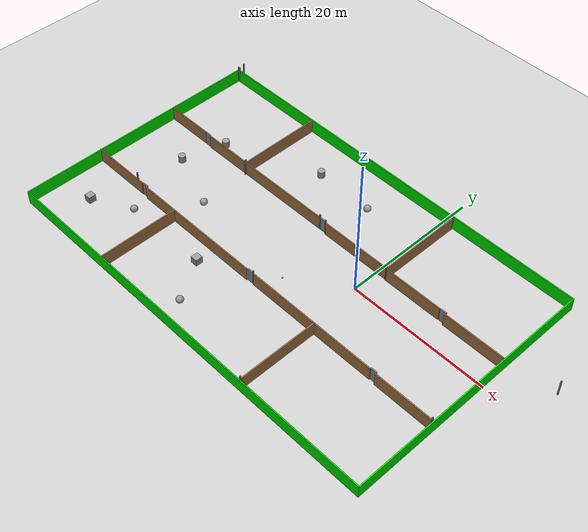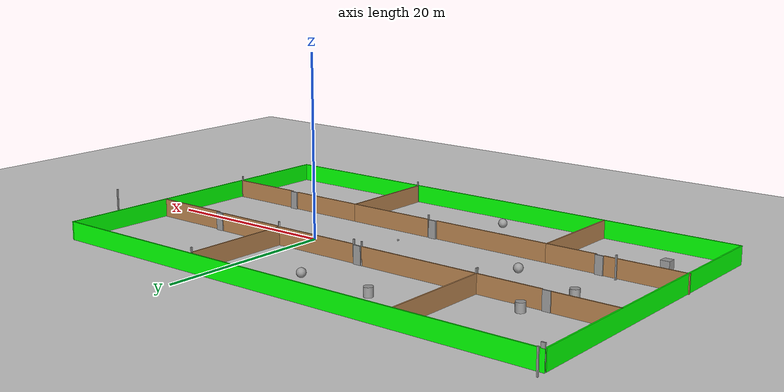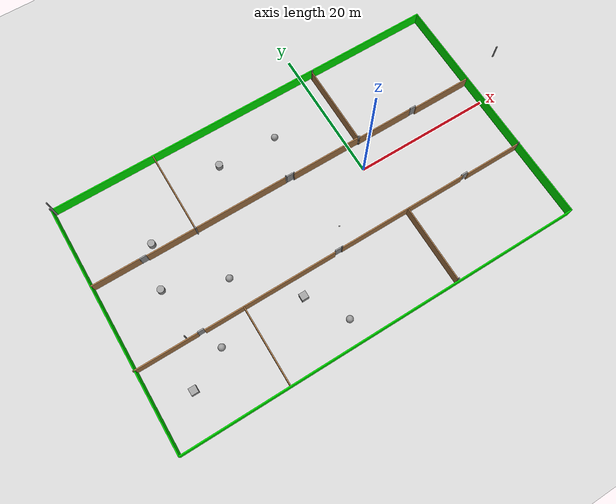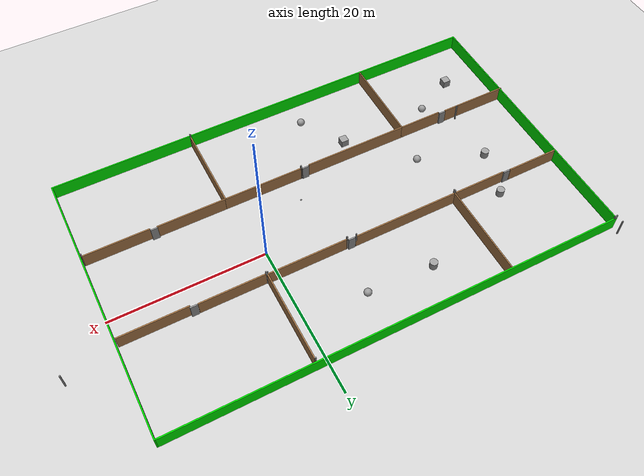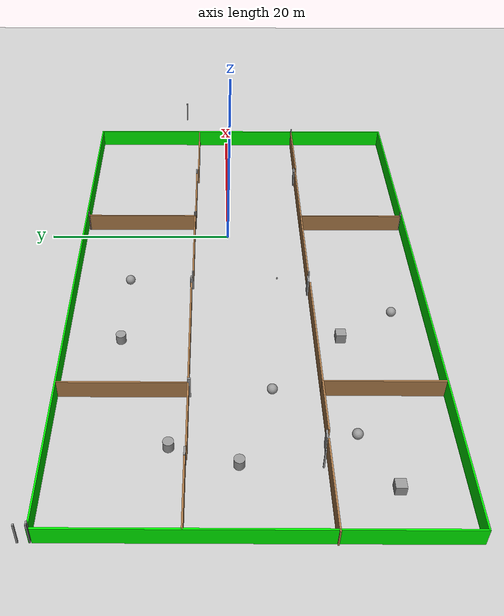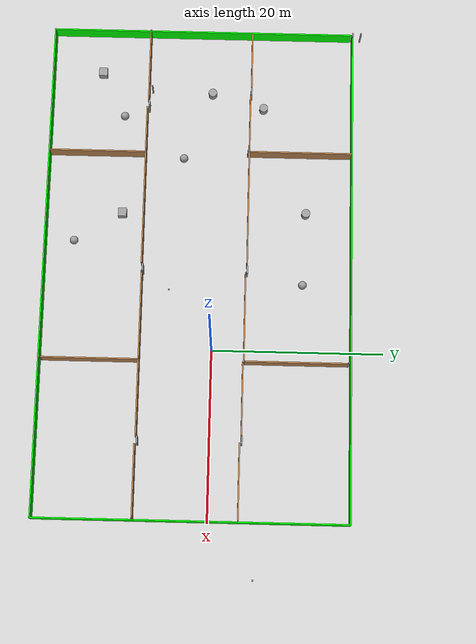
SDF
<sdf version="1.6">
 <world name="default">
  <model name="ground_plane">
   <static>1</static>
   <link name="link">
    <collision name="collision">
     <geometry><plane><normal>0 0 1</normal><size>100 100</size></plane></geometry>
     <surface>
      <contact><collide_bitmask>65535</collide_bitmask></contact>
      <friction><ode><mu>100</mu><mu2>50</mu2></ode></friction>
     </surface>
    </collision>
    <visual name="visual">
     <cast_shadows>0</cast_shadows>
     <geometry><plane><normal>0 0 1</normal><size>100 100</size></plane></geometry>
     <material>
      <script><uri>file://media/materials/scripts/gazebo.material</uri><name>Gazebo/Grey</name></script>
     </material>
    </visual>
   </link>
  </model>
  <model name="project1building">
   <pose>-6.462 -1.38005 0 0 -0 0</pose>
   <link name="Door_0">
    <collision name="Door_0_Collision">
     <geometry><box><size>0.9 0.17 2</size></box></geometry>
     <pose>0 0 1 0 -0 0</pose>
    </collision>
    <visual name="Door_0_Visual">
     <pose>0 0 1 0 -0 0</pose>
     <geometry><box><size>0.9 0.17 2</size></box></geometry>
     <material>
      <script><uri>file://media/materials/scripts/gazebo.material</uri><name>Gazebo/Grey</name></script>
     </material>
    </visual>
    <pose>-25.0869 5.43282 0 0 -0 0</pose>
   </link>
   <link name="Door_1">
    <collision name="Door_1_Collision">
     <geometry><box><size>0.9 0.17 2</size></box></geometry>
     <pose>0 0 1 0 -0 0</pose>
    </collision>
    <visual name="Door_1_Visual">
     <pose>0 0 1 0 -0 0</pose>
     <geometry><box><size>0.9 0.17 2</size></box></geometry>
     <material>
      <script><uri>file://media/materials/scripts/gazebo.material</uri><name>Gazebo/Grey</name></script>
     </material>
    </visual>
    <pose>-23.2683 -6.84282 0 0 -0 0</pose>
   </link>
   <link name="Door_4">
    <collision name="Door_4_Collision">
     <geometry><box><size>0.9 0.17 2</size></box></geometry>
     <pose>0 0 1 0 -0 0</pose>
    </collision>
    <visual name="Door_4_Visual">
     <pose>0 0 1 0 -0 0</pose>
     <geometry><box><size>0.9 0.17 2</size></box></geometry>
     <material>
      <script><uri>file://media/materials/scripts/gazebo.material</uri><name>Gazebo/Grey</name></script>
     </material>
    </visual>
    <pose>-2.96481 5.35785 0 0 -0 0</pose>
   </link>
   <link name="Door_5">
    <collision name="Door_5_Collision">
     <geometry><box><size>0.9 0.17 2</size></box></geometry>
     <pose>0 0 1 0 -0 0</pose>
    </collision>
    <visual name="Door_5_Visual">
     <pose>0 0 1 0 -0 0</pose>
     <geometry><box><size>0.9 0.17 2</size></box></geometry>
     <material>
      <script><uri>file://media/materials/scripts/gazebo.material</uri><name>Gazebo/Grey</name></script>
     </material>
    </visual>
    <pose>-2.96481 -6.90064 0 0 -0 0</pose>
   </link>
   <link name="Door_6">
    <collision name="Door_6_Collision">
     <geometry><box><size>0.9 0.17 2</size></box></geometry>
     <pose>0 0 1 0 -0 0</pose>
    </collision>
    <visual name="Door_6_Visual">
     <pose>0 0 1 0 -0 0</pose>
     <geometry><box><size>0.9 0.17 2</size></box></geometry>
     <material>
      <script><uri>file://media/materials/scripts/gazebo.material</uri><name>Gazebo/Grey</name></script>
     </material>
    </visual>
    <pose>17.0376 5.12607 0 0 -0 0</pose>
   </link>
   <link name="Door_7">
    <collision name="Door_7_Collision">
     <geometry><box><size>0.9 0.17 2</size></box></geometry>
     <pose>0 0 1 0 -0 0</pose>
    </collision>
    <visual name="Door_7_Visual">
     <pose>0 0 1 0 -0 0</pose>
     <geometry><box><size>0.9 0.17 2</size></box></geometry>
     <material>
      <script><uri>file://media/materials/scripts/gazebo.material</uri><name>Gazebo/Grey</name></script>
     </material>
    </visual>
    <pose>17.268 -6.84263 0 0 -0 0</pose>
   </link>
   <link name="Wall_10">
    <collision name="Wall_10_Collision">
     <geometry><box><size>0.15 0.15 2.5</size></box></geometry>
     <pose>0 0 1.25 0 -0 0</pose>
    </collision>
    <visual name="Wall_10_Visual">
     <pose>0 0 1.25 0 -0 0</pose>
     <geometry><box><size>0.15 0.15 2.5</size></box></geometry>
     <material>
      <script><uri>file://media/materials/scripts/gazebo.material</uri><name>Gazebo/Grey</name></script>
      <ambient>1 1 1 1</ambient>
     </material>
     <meta><layer>0</layer></meta>
    </visual>
    <pose>-32.548 17.55 0 0 -0 0</pose>
   </link>
   <link name="Wall_11">
    <collision name="Wall_11_Collision">
     <geometry><box><size>0.410301 0.15 2.5</size></box></geometry>
     <pose>0 0 1.25 0 -0 0</pose>
    </collision>
    <visual name="Wall_11_Visual">
     <pose>0 0 1.25 0 -0 0</pose>
     <geometry><box><size>0.410301 0.15 2.5</size></box></geometry>
     <material>
      <script><uri>file://media/materials/scripts/gazebo.material</uri><name>Gazebo/Grey</name></script>
      <ambient>1 1 1 1</ambient>
     </material>
     <meta><layer>0</layer></meta>
    </visual>
    <pose>-32.4179 17.55 0 0 0 -0.000357</pose>
   </link>
   <link name="Wall_13">
    <collision name="Wall_13_Collision">
     <geometry><box><size>7 0.15 2</size></box></geometry>
     <pose>0 0 1 0 -0 0</pose>
    </collision>
    <visual name="Wall_13_Visual">
     <pose>0 0 1 0 -0 0</pose>
     <geometry><box><size>7 0.15 2</size></box></geometry>
     <material>
      <script><uri>file://media/materials/scripts/gazebo.material</uri><name>Gazebo/Wood</name></script>
      <ambient>0 1 0 1</ambient>
     </material>
     <meta><layer>0</layer></meta>
    </visual>
    <pose>-29.087 5.43305 0 0 -0 0</pose>
   </link>
   <link name="Wall_17">
    <collision name="Wall_17_Collision">
     <geometry><box><size>12.25 0.15 2</size></box></geometry>
     <pose>0 0 1 0 -0 0</pose>
    </collision>
    <visual name="Wall_17_Visual">
     <pose>0 0 1 0 -0 0</pose>
     <geometry><box><size>12.25 0.15 2</size></box></geometry>
     <material>
      <script><uri>file://media/materials/scripts/gazebo.material</uri><name>Gazebo/Wood</name></script>
      <ambient>0 1 0 1</ambient>
     </material>
     <meta><layer>0</layer></meta>
    </visual>
    <pose>-17.419 11.376 0 0 0 -1.5708</pose>
   </link>
   <link name="Wall_18">
    <collision name="Wall_18_Collision">
     <geometry><box><size>7.25 0.15 2</size></box></geometry>
     <pose>0 0 1 0 -0 0</pose>
    </collision>
    <visual name="Wall_18_Visual">
     <pose>0 0 1 0 -0 0</pose>
     <geometry><box><size>7.25 0.15 2</size></box></geometry>
     <material>
      <script><uri>file://media/materials/scripts/gazebo.material</uri><name>Gazebo/Wood</name></script>
      <ambient>0 1 0 1</ambient>
     </material>
     <meta><layer>0</layer></meta>
    </visual>
    <pose>-20.969 5.32605 0 0 -0 3.14159</pose>
   </link>
   <link name="Wall_21">
    <collision name="Wall_21_Collision">
     <geometry><box><size>0.15 0.15 2.5</size></box></geometry>
     <pose>0 0 1.25 0 -0 0</pose>
    </collision>
    <visual name="Wall_21_Visual">
     <pose>0 0 1.25 0 -0 0</pose>
     <geometry><box><size>0.15 0.15 2.5</size></box></geometry>
     <material>
      <script><uri>file://media/materials/scripts/gazebo.material</uri><name>Gazebo/Grey</name></script>
      <ambient>1 1 1 1</ambient>
     </material>
     <meta><layer>0</layer></meta>
    </visual>
    <pose>-25.303 -6.50195 0 0 -0 0</pose>
   </link>
   <link name="Wall_23">
    <collision name="Wall_23_Collision">
     <geometry><box><size>9 0.15 2</size></box></geometry>
     <pose>0 0 1 0 -0 0</pose>
    </collision>
    <visual name="Wall_23_Visual">
     <pose>0 0 1 0 -0 0</pose>
     <geometry><box><size>9 0.15 2</size></box></geometry>
     <material>
      <script><uri>file://media/materials/scripts/gazebo.material</uri><name>Gazebo/Wood</name></script>
      <ambient>0 1 0 1</ambient>
     </material>
     <meta><layer>0</layer></meta>
    </visual>
    <pose>-28.2461 -6.93341 0 0 -0 0</pose>
   </link>
   <link name="Wall_26">
    <collision name="Wall_26_Collision">
     <geometry><box><size>5.75 0.15 2</size></box></geometry>
     <pose>0 0 1 0 -0 0</pose>
    </collision>
    <visual name="Wall_26_Visual">
     <pose>0 0 1 0 -0 0</pose>
     <geometry><box><size>5.75 0.15 2</size></box></geometry>
     <material>
      <script><uri>file://media/materials/scripts/gazebo.material</uri><name>Gazebo/Wood</name></script>
      <ambient>0 1 0 1</ambient>
     </material>
     <meta><layer>0</layer></meta>
    </visual>
    <pose>-19.973 -7.05495 0 0 -0 0</pose>
   </link>
   <link name="Wall_27">
    <collision name="Wall_27_Collision">
     <geometry><box><size>11.5 0.15 2</size></box></geometry>
     <pose>0 0 1 0 -0 0</pose>
    </collision>
    <visual name="Wall_27_Visual">
     <pose>0 0 1 0 -0 0</pose>
     <geometry><box><size>11.5 0.15 2</size></box></geometry>
     <material>
      <script><uri>file://media/materials/scripts/gazebo.material</uri><name>Gazebo/Wood</name></script>
      <ambient>0 1 0 1</ambient>
     </material>
     <meta><layer>0</layer></meta>
    </visual>
    <pose>-17.173 -12.73 0 0 0 -1.5708</pose>
   </link>
   <link name="Wall_3">
    <collision name="Wall_3_Collision">
     <geometry><box><size>0.16 0.15 2.5</size></box></geometry>
     <pose>0 0 1.25 0 -0 0</pose>
    </collision>
    <visual name="Wall_3_Visual">
     <pose>0 0 1.25 0 -0 0</pose>
     <geometry><box><size>0.16 0.15 2.5</size></box></geometry>
     <material>
      <script><uri>file://media/materials/scripts/gazebo.material</uri><name>Gazebo/Grey</name></script>
      <ambient>1 1 1 1</ambient>
     </material>
     <meta><layer>0</layer></meta>
    </visual>
    <pose>-32.5627 18.55 0 0 -0 0</pose>
   </link>
   <link name="Wall_32">
    <collision name="Wall_32_Collision">
     <geometry><box><size>0.3124 0.15 2.5</size></box></geometry>
     <pose>0 0 1.25 0 -0 0</pose>
    </collision>
    <visual name="Wall_32_Visual">
     <pose>0 0 1.25 0 -0 0</pose>
     <geometry><box><size>0.3124 0.15 2.5</size></box></geometry>
     <material>
      <script><uri>file://media/materials/scripts/gazebo.material</uri><name>Gazebo/Grey</name></script>
      <ambient>1 1 1 1</ambient>
     </material>
     <meta><layer>0</layer></meta>
    </visual>
    <pose>-17.4115 5.2452 0 0 0 -1.47732</pose>
   </link>
   <link name="Wall_37">
    <collision name="Wall_37_Collision">
     <geometry><box><size>14 0.15 2</size></box></geometry>
     <pose>0 0 1 0 -0 0</pose>
    </collision>
    <visual name="Wall_37_Visual">
     <pose>0 0 1 0 -0 0</pose>
     <geometry><box><size>14 0.15 2</size></box></geometry>
     <material>
      <script><uri>file://media/materials/scripts/gazebo.material</uri><name>Gazebo/Wood</name></script>
      <ambient>0 1 0 1</ambient>
     </material>
     <meta><layer>0</layer></meta>
    </visual>
    <pose>-10.494 5.32605 0 0 -0 0</pose>
   </link>
   <link name="Wall_38">
    <collision name="Wall_38_Collision">
     <geometry><box><size>0.16 0.15 2.5</size></box></geometry>
     <pose>0 0 1.25 0 -0 0</pose>
    </collision>
    <visual name="Wall_38_Visual">
     <pose>0 0 1.25 0 -0 0</pose>
     <geometry><box><size>0.16 0.15 2.5</size></box></geometry>
     <material>
      <script><uri>file://media/materials/scripts/gazebo.material</uri><name>Gazebo/Grey</name></script>
      <ambient>1 1 1 1</ambient>
     </material>
     <meta><layer>0</layer></meta>
    </visual>
    <pose>-3.56404 5.32605 0 0 -0 0</pose>
   </link>
   <link name="Wall_40">
    <collision name="Wall_40_Collision">
     <geometry><box><size>0.16 0.15 2.5</size></box></geometry>
     <pose>0 0 1.25 0 -0 0</pose>
    </collision>
    <visual name="Wall_40_Visual">
     <pose>0 0 1.25 0 -0 0</pose>
     <geometry><box><size>0.16 0.15 2.5</size></box></geometry>
     <material>
      <script><uri>file://media/materials/scripts/gazebo.material</uri><name>Gazebo/Grey</name></script>
      <ambient>1 1 1 1</ambient>
     </material>
     <meta><layer>0</layer></meta>
    </visual>
    <pose>-2.39819 5.17087 0 0 -0 0.034078</pose>
   </link>
   <link name="Wall_41">
    <collision name="Wall_41_Collision">
     <geometry><box><size>10.5 0.15 2</size></box></geometry>
     <pose>0 0 1 0 -0 0</pose>
    </collision>
    <visual name="Wall_41_Visual">
     <pose>0 0 1 0 -0 0</pose>
     <geometry><box><size>10.5 0.15 2</size></box></geometry>
     <material>
      <script><uri>file://media/materials/scripts/gazebo.material</uri><name>Gazebo/Wood</name></script>
      <ambient>0 1 0 1</ambient>
     </material>
     <meta><layer>0</layer></meta>
    </visual>
    <pose>2.78196 5.17105 0 0 -0 0</pose>
   </link>
   <link name="Wall_42">
    <collision name="Wall_42_Collision">
     <geometry><box><size>12.25 0.15 2</size></box></geometry>
     <pose>0 0 1 0 -0 0</pose>
    </collision>
    <visual name="Wall_42_Visual">
     <pose>0 0 1 0 -0 0</pose>
     <geometry><box><size>12.25 0.15 2</size></box></geometry>
     <material>
      <script><uri>file://media/materials/scripts/gazebo.material</uri><name>Gazebo/Wood</name></script>
      <ambient>0 1 0 1</ambient>
     </material>
     <meta><layer>0</layer></meta>
    </visual>
    <pose>7.95696 11.221 0 0 -0 1.5708</pose>
   </link>
   <link name="Wall_43">
    <collision name="Wall_43_Collision">
     <geometry><box><size>0.16 0.15 2.5</size></box></geometry>
     <pose>0 0 1.25 0 -0 0</pose>
    </collision>
    <visual name="Wall_43_Visual">
     <pose>0 0 1.25 0 -0 0</pose>
     <geometry><box><size>0.16 0.15 2.5</size></box></geometry>
     <material>
      <script><uri>file://media/materials/scripts/gazebo.material</uri><name>Gazebo/Grey</name></script>
      <ambient>1 1 1 1</ambient>
     </material>
     <meta><layer>0</layer></meta>
    </visual>
    <pose>7.9618 17.2709 0 0 0 -0.036291</pose>
   </link>
   <link name="Wall_45">
    <collision name="Wall_45_Collision">
     <geometry><box><size>13.75 0.15 2</size></box></geometry>
     <pose>0 0 1 0 -0 0</pose>
    </collision>
    <visual name="Wall_45_Visual">
     <pose>0 0 1 0 -0 0</pose>
     <geometry><box><size>13.75 0.15 2</size></box></geometry>
     <material>
      <script><uri>file://media/materials/scripts/gazebo.material</uri><name>Gazebo/Wood</name></script>
      <ambient>0 1 0 1</ambient>
     </material>
     <meta><layer>0</layer></meta>
    </visual>
    <pose>-10.373 -7.05495 0 0 -0 0</pose>
   </link>
   <link name="Wall_49">
    <collision name="Wall_49_Collision">
     <geometry><box><size>0.16 0.15 2.5</size></box></geometry>
     <pose>0 0 1.25 0 -0 0</pose>
    </collision>
    <visual name="Wall_49_Visual">
     <pose>0 0 1.25 0 -0 0</pose>
     <geometry><box><size>0.16 0.15 2.5</size></box></geometry>
     <material>
      <script><uri>file://media/materials/scripts/gazebo.material</uri><name>Gazebo/Grey</name></script>
      <ambient>1 1 1 1</ambient>
     </material>
     <meta><layer>0</layer></meta>
    </visual>
    <pose>-2.39819 -6.99408 0 0 -0 0.025083</pose>
   </link>
   <link name="Wall_5">
    <collision name="Wall_5_Collision">
     <geometry><box><size>36 0.15 2</size></box></geometry>
     <pose>0 0 1 0 -0 0</pose>
    </collision>
    <visual name="Wall_5_Visual">
     <pose>0 0 1 0 -0 0</pose>
     <geometry><box><size>36 0.15 2</size></box></geometry>
     <material>
      <script><uri>file://media/materials/scripts/gazebo.material</uri><name>Gazebo/Grey</name></script>
      <ambient>0 1 0 1</ambient>
     </material>
     <meta><layer>0</layer></meta>
    </visual>
    <pose>-32.548 -0.624953 0 0 0 -1.5708</pose>
   </link>
   <link name="Wall_50">
    <collision name="Wall_50_Collision">
     <geometry><box><size>10.5 0.15 2</size></box></geometry>
     <pose>0 0 1 0 -0 0</pose>
    </collision>
    <visual name="Wall_50_Visual">
     <pose>0 0 1 0 -0 0</pose>
     <geometry><box><size>10.5 0.15 2</size></box></geometry>
     <material>
      <script><uri>file://media/materials/scripts/gazebo.material</uri><name>Gazebo/Wood</name></script>
      <ambient>0 1 0 1</ambient>
     </material>
     <meta><layer>0</layer></meta>
    </visual>
    <pose>2.78196 -6.99395 0 0 -0 0</pose>
   </link>
   <link name="Wall_51">
    <collision name="Wall_51_Collision">
     <geometry><box><size>11.5 0.15 2</size></box></geometry>
     <pose>0 0 1 0 -0 0</pose>
    </collision>
    <visual name="Wall_51_Visual">
     <pose>0 0 1 0 -0 0</pose>
     <geometry><box><size>11.5 0.15 2</size></box></geometry>
     <material>
      <script><uri>file://media/materials/scripts/gazebo.material</uri><name>Gazebo/Wood</name></script>
      <ambient>0 1 0 1</ambient>
     </material>
     <meta><layer>0</layer></meta>
    </visual>
    <pose>7.95696 -12.669 0 0 0 -1.5708</pose>
   </link>
   <link name="Wall_52">
    <collision name="Wall_52_Collision">
     <geometry><box><size>0.16 0.15 2.5</size></box></geometry>
     <pose>0 0 1.25 0 -0 0</pose>
    </collision>
    <visual name="Wall_52_Visual">
     <pose>0 0 1.25 0 -0 0</pose>
     <geometry><box><size>0.16 0.15 2.5</size></box></geometry>
     <material>
      <script><uri>file://media/materials/scripts/gazebo.material</uri><name>Gazebo/Grey</name></script>
      <ambient>1 1 1 1</ambient>
     </material>
     <meta><layer>0</layer></meta>
    </visual>
    <pose>7.9618 -18.3441 0 0 0 -0.026712</pose>
   </link>
   <link name="Wall_54">
    <collision name="Wall_54_Collision">
     <geometry><box><size>0.310611 0.15 2.5</size></box></geometry>
     <pose>0 0 1.25 0 -0 0</pose>
    </collision>
    <visual name="Wall_54_Visual">
     <pose>0 0 1.25 0 -0 0</pose>
     <geometry><box><size>0.310611 0.15 2.5</size></box></geometry>
     <material>
      <script><uri>file://media/materials/scripts/gazebo.material</uri><name>Gazebo/Grey</name></script>
      <ambient>1 1 1 1</ambient>
     </material>
     <meta><layer>0</layer></meta>
    </visual>
    <pose>8.02196 5.12405 0 0 0 -0.626047</pose>
   </link>
   <link name="Wall_55">
    <collision name="Wall_55_Collision">
     <geometry><box><size>8.5 0.15 2</size></box></geometry>
     <pose>0 0 1 0 -0 0</pose>
    </collision>
    <visual name="Wall_55_Visual">
     <pose>0 0 1 0 -0 0</pose>
     <geometry><box><size>8.5 0.15 2</size></box></geometry>
     <material>
      <script><uri>file://media/materials/scripts/gazebo.material</uri><name>Gazebo/Wood</name></script>
      <ambient>0 1 0 1</ambient>
     </material>
     <meta><layer>0</layer></meta>
    </visual>
    <pose>12.262 5.07705 0 0 -0 0</pose>
   </link>
   <link name="Wall_6">
    <collision name="Wall_6_Collision">
     <geometry><box><size>59 0.15 2</size></box></geometry>
     <pose>0 0 1 0 -0 0</pose>
    </collision>
    <visual name="Wall_6_Visual">
     <pose>0 0 1 0 -0 0</pose>
     <geometry><box><size>59 0.15 2</size></box></geometry>
     <material>
      <script><uri>file://media/materials/scripts/gazebo.material</uri><name>Gazebo/Grey</name></script>
      <ambient>0 1 0 1</ambient>
     </material>
     <meta><layer>0</layer></meta>
    </visual>
    <pose>-3.12304 -18.55 0 0 -0 0</pose>
   </link>
   <link name="Wall_60">
    <collision name="Wall_60_Collision">
     <geometry><box><size>8.75 0.15 2</size></box></geometry>
     <pose>0 0 1 0 -0 0</pose>
    </collision>
    <visual name="Wall_60_Visual">
     <pose>0 0 1 0 -0 0</pose>
     <geometry><box><size>8.75 0.15 2</size></box></geometry>
     <material>
      <script><uri>file://media/materials/scripts/gazebo.material</uri><name>Gazebo/Wood</name></script>
      <ambient>0 1 0 1</ambient>
     </material>
     <meta><layer>0</layer></meta>
    </visual>
    <pose>21.745 4.88205 0 0 -0 0</pose>
   </link>
   <link name="Wall_62">
    <collision name="Wall_62_Collision">
     <geometry><box><size>0.16 0.15 2.5</size></box></geometry>
     <pose>0 0 1.25 0 -0 0</pose>
    </collision>
    <visual name="Wall_62_Visual">
     <pose>0 0 1.25 0 -0 0</pose>
     <geometry><box><size>0.16 0.15 2.5</size></box></geometry>
     <material>
      <script><uri>file://media/materials/scripts/gazebo.material</uri><name>Gazebo/Grey</name></script>
      <ambient>1 1 1 1</ambient>
     </material>
     <meta><layer>0</layer></meta>
    </visual>
    <pose>32.6661 6.65487 0 0 -0 0</pose>
   </link>
   <link name="Wall_67">
    <collision name="Wall_67_Collision">
     <geometry><box><size>9 0.15 2</size></box></geometry>
     <pose>0 0 1 0 -0 0</pose>
    </collision>
    <visual name="Wall_67_Visual">
     <pose>0 0 1 0 -0 0</pose>
     <geometry><box><size>9 0.15 2</size></box></geometry>
     <material>
      <script><uri>file://media/materials/scripts/gazebo.material</uri><name>Gazebo/Wood</name></script>
      <ambient>0 1 0 1</ambient>
     </material>
     <meta><layer>0</layer></meta>
    </visual>
    <pose>12.382 -6.99395 0 0 -0 0</pose>
   </link>
   <link name="Wall_7">
    <collision name="Wall_7_Collision">
     <geometry><box><size>36.25 0.15 2</size></box></geometry>
     <pose>0 0 1 0 -0 0</pose>
    </collision>
    <visual name="Wall_7_Visual">
     <pose>0 0 1 0 -0 0</pose>
     <geometry><box><size>36.25 0.15 2</size></box></geometry>
     <material>
      <script><uri>file://media/materials/scripts/gazebo.material</uri><name>Gazebo/Grey</name></script>
      <ambient>0 1 0 1</ambient>
     </material>
     <meta><layer>0</layer></meta>
    </visual>
    <pose>26.302 -0.499953 0 0 -0 1.5708</pose>
   </link>
   <link name="Wall_71">
    <collision name="Wall_71_Collision">
     <geometry><box><size>8.5 0.15 2</size></box></geometry>
     <pose>0 0 1 0 -0 0</pose>
    </collision>
    <visual name="Wall_71_Visual">
     <pose>0 0 1 0 -0 0</pose>
     <geometry><box><size>8.5 0.15 2</size></box></geometry>
     <material>
      <script><uri>file://media/materials/scripts/gazebo.material</uri><name>Gazebo/Wood</name></script>
      <ambient>0 1 0 1</ambient>
     </material>
     <meta><layer>0</layer></meta>
    </visual>
    <pose>21.935 -7.08895 0 0 -0 0</pose>
   </link>
   <link name="Wall_72">
    <collision name="Wall_72_Collision">
     <geometry><box><size>0.16 0.15 2.5</size></box></geometry>
     <pose>0 0 1.25 0 -0 0</pose>
    </collision>
    <visual name="Wall_72_Visual">
     <pose>0 0 1.25 0 -0 0</pose>
     <geometry><box><size>0.16 0.15 2.5</size></box></geometry>
     <material>
      <script><uri>file://media/materials/scripts/gazebo.material</uri><name>Gazebo/Grey</name></script>
      <ambient>1 1 1 1</ambient>
     </material>
     <meta><layer>0</layer></meta>
    </visual>
    <pose>26.1151 -7.08885 0 0 -0 0.020148</pose>
   </link>
   <link name="Wall_8">
    <collision name="Wall_8_Collision">
     <geometry><box><size>59 0.15 2</size></box></geometry>
     <pose>0 0 1 0 -0 0</pose>
    </collision>
    <visual name="Wall_8_Visual">
     <pose>0 0 1 0 -0 0</pose>
     <geometry><box><size>59 0.15 2</size></box></geometry>
     <material>
      <script><uri>file://media/materials/scripts/gazebo.material</uri><name>Gazebo/Grey</name></script>
      <ambient>0 1 0 1</ambient>
     </material>
     <meta><layer>0</layer></meta>
    </visual>
    <pose>-3.12304 17.55 0 0 -0 3.14159</pose>
   </link>
   <link name="Wall_9">
    <collision name="Wall_9_Collision">
     <geometry><box><size>0.15 0.15 2.5</size></box></geometry>
     <pose>0 0 1.25 0 -0 0</pose>
    </collision>
    <visual name="Wall_9_Visual">
     <pose>0 0 1.25 0 -0 0</pose>
     <geometry><box><size>0.15 0.15 2.5</size></box></geometry>
     <material>
      <script><uri>file://media/materials/scripts/gazebo.material</uri><name>Gazebo/Grey</name></script>
      <ambient>1 1 1 1</ambient>
     </material>
     <meta><layer>0</layer></meta>
    </visual>
    <pose>-32.548 17.55 0 0 -0 0</pose>
   </link>
   <static>1</static>
  </model>
  <model name="my_ball">
   <link name="link_0">
    <inertial>
     <mass>1</mass>
     <inertia><ixx>0.1</ixx><ixy>0</ixy><ixz>0</ixz><iyy>0.1</iyy><iyz>0</iyz><izz>0.1</izz></inertia>
    </inertial>
    <visual name="visual">
     <geometry><sphere><radius>0.1</radius></sphere></geometry>
     <material>
      <lighting>1</lighting>
      <script><uri>file://media/materials/scripts/gazebo.material</uri><name>Gazebo/Grey</name></script>
      <shader type="pixel"><normal_map>__default__</normal_map></shader>
      <ambient>1 1 1 1</ambient>
      <diffuse>1 1 1 1</diffuse>
      <specular>1 1 1 1</specular>
      <emissive>1 1 1 1</emissive>
     </material>
    </visual>
    <collision name="collision">
     <geometry><sphere><radius>0.1</radius></sphere></geometry>
     <surface>
      <friction>
       <ode><mu>1</mu><mu2>1</mu2><fdir1>0 0 0</fdir1><slip1>0</slip1><slip2>0</slip2></ode>
       <torsional>
        <coefficient>1</coefficient>
        <patch_radius>0</patch_radius>
        <surface_radius>0</surface_radius>
        <use_patch_radius>1</use_patch_radius>
        <ode><slip>0</slip></ode>
       </torsional>
      </friction>
      <bounce><restitution_coefficient>0</restitution_coefficient><threshold>1e+06</threshold></bounce>
      <contact>
       <collide_without_contact>0</collide_without_contact>
       <collide_without_contact_bitmask>1</collide_without_contact_bitmask>
       <collide_bitmask>1</collide_bitmask>
       <ode>
        <soft_cfm>0</soft_cfm>
        <soft_erp>0.2</soft_erp>
        <kp>1e+13</kp>
        <kd>1</kd>
        <max_vel>0.01</max_vel>
        <min_depth>0</min_depth>
       </ode>
       <bullet>
        <split_impulse>1</split_impulse>
        <split_impulse_penetration_threshold>-0.01</split_impulse_penetration_threshold>
        <soft_cfm>0</soft_cfm>
        <soft_erp>0.2</soft_erp>
        <kp>1e+13</kp>
        <kd>1</kd>
       </bullet>
      </contact>
     </surface>
    </collision>
   </link>
   <static>0</static>
   <pose>-7.22077 -5.21156 0.1 0 -0 0</pose>
  </model>
  <model name="unit_box_1">
   <pose>-16.354 -10.9969 0.499995 0 1e-05 0</pose>
   <link name="link">
    <inertial>
     <mass>1</mass>
     <inertia>
      <ixx>0.166667</ixx>
      <ixy>0</ixy>
      <ixz>0</ixz>
      <iyy>0.166667</iyy>
      <iyz>0</iyz>
      <izz>0.166667</izz>
     </inertia>
    </inertial>
    <collision name="collision"><geometry><box><size>1 1 1</size></box></geometry></collision>
    <visual name="visual">
     <geometry><box><size>1 1 1</size></box></geometry>
     <material>
      <script><name>Gazebo/Grey</name><uri>file://media/materials/scripts/gazebo.material</uri></script>
     </material>
    </visual>
   </link>
  </model>
  <model name="unit_cylinder_2">
   <pose>-16.6917 10.7893 0.499992 -3e-06 3e-06 0</pose>
   <link name="link">
    <inertial>
     <mass>1</mass>
     <inertia><ixx>0.145833</ixx><ixy>0</ixy><ixz>0</ixz><iyy>0.145833</iyy><iyz>0</iyz><izz>0.125</izz></inertia>
    </inertial>
    <collision name="collision">
     <geometry><cylinder><radius>0.5</radius><length>1</length></cylinder></geometry>
    </collision>
    <visual name="visual">
     <geometry><cylinder><radius>0.5</radius><length>1</length></cylinder></geometry>
     <material>
      <script><name>Gazebo/Grey</name><uri>file://media/materials/scripts/gazebo.material</uri></script>
     </material>
    </visual>
   </link>
  </model>
  <model name="unit_cylinder_3">
   <pose>-29.8093 5.55006 0.499992 -3e-06 3e-06 0</pose>
   <link name="link">
    <inertial>
     <mass>1</mass>
     <inertia><ixx>0.145833</ixx><ixy>0</ixy><ixz>0</ixz><iyy>0.145833</iyy><iyz>0</iyz><izz>0.125</izz></inertia>
    </inertial>
    <collision name="collision">
     <geometry><cylinder><radius>0.5</radius><length>1</length></cylinder></geometry>
    </collision>
    <visual name="visual">
     <geometry><cylinder><radius>0.5</radius><length>1</length></cylinder></geometry>
     <material>
      <script><name>Gazebo/Grey</name><uri>file://media/materials/scripts/gazebo.material</uri></script>
     </material>
    </visual>
   </link>
  </model>
  <model name="unit_cylinder_4">
   <pose>-31.6246 -0.623525 0.499992 -3e-06 3e-06 0</pose>
   <link name="link">
    <inertial>
     <mass>1</mass>
     <inertia><ixx>0.145833</ixx><ixy>0</ixy><ixz>0</ixz><iyy>0.145833</iyy><iyz>0</iyz><izz>0.125</izz></inertia>
    </inertial>
    <collision name="collision">
     <geometry><cylinder><radius>0.5</radius><length>1</length></cylinder></geometry>
    </collision>
    <visual name="visual">
     <geometry><cylinder><radius>0.5</radius><length>1</length></cylinder></geometry>
     <material>
      <script><name>Gazebo/Grey</name><uri>file://media/materials/scripts/gazebo.material</uri></script>
     </material>
    </visual>
   </link>
  </model>
  <model name="unit_sphere_1">
   <pose>-23.3345 -3.87778 0.5 0 -0 0</pose>
   <link name="link">
    <inertial>
     <mass>1</mass>
     <inertia><ixx>0.1</ixx><ixy>0</ixy><ixz>0</ixz><iyy>0.1</iyy><iyz>0</iyz><izz>0.1</izz></inertia>
    </inertial>
    <collision name="collision"><geometry><sphere><radius>0.5</radius></sphere></geometry></collision>
    <visual name="visual">
     <geometry><sphere><radius>0.5</radius></sphere></geometry>
     <material>
      <script><name>Gazebo/Grey</name><uri>file://media/materials/scripts/gazebo.material</uri></script>
     </material>
    </visual>
   </link>
  </model>
  <model name="unit_box_2">
   <pose>-34.0365 -14.0018 0.499995 0 1e-05 0</pose>
   <link name="link">
    <inertial>
     <mass>1</mass>
     <inertia>
      <ixx>0.166667</ixx>
      <ixy>0</ixy>
      <ixz>0</ixz>
      <iyy>0.166667</iyy>
      <iyz>0</iyz>
      <izz>0.166667</izz>
     </inertia>
    </inertial>
    <collision name="collision"><geometry><box><size>1 1 1</size></box></geometry></collision>
    <visual name="visual">
     <geometry><box><size>1 1 1</size></box></geometry>
     <material>
      <script><name>Gazebo/Grey</name><uri>file://media/materials/scripts/gazebo.material</uri></script>
     </material>
    </visual>
   </link>
  </model>
  <model name="unit_sphere_2">
   <pose>-28.5421 -11.1704 0.5 0 -0 0</pose>
   <link name="link">
    <inertial>
     <mass>1</mass>
     <inertia><ixx>0.1</ixx><ixy>0</ixy><ixz>0</ixz><iyy>0.1</iyy><iyz>0</iyz><izz>0.1</izz></inertia>
    </inertial>
    <collision name="collision"><geometry><sphere><radius>0.5</radius></sphere></geometry></collision>
    <visual name="visual">
     <geometry><sphere><radius>0.5</radius></sphere></geometry>
     <material>
      <script><name>Gazebo/Grey</name><uri>file://media/materials/scripts/gazebo.material</uri></script>
     </material>
    </visual>
   </link>
  </model>
  <model name="unit_sphere_3">
   <pose>-12.8724 -16.5916 0.5 0 -0 0</pose>
   <link name="link">
    <inertial>
     <mass>1</mass>
     <inertia><ixx>0.1</ixx><ixy>0</ixy><ixz>0</ixz><iyy>0.1</iyy><iyz>0</iyz><izz>0.1</izz></inertia>
    </inertial>
    <collision name="collision"><geometry><sphere><radius>0.5</radius></sphere></geometry></collision>
    <visual name="visual">
     <geometry><sphere><radius>0.5</radius></sphere></geometry>
     <material>
      <script><name>Gazebo/Grey</name><uri>file://media/materials/scripts/gazebo.material</uri></script>
     </material>
    </visual>
   </link>
  </model>
  <model name="unit_sphere_5_clone_1">
   <pose>-8 10.5087 0.5 0 -0 0</pose>
   <link name="link">
    <inertial>
     <mass>1</mass>
     <inertia><ixx>0.1</ixx><ixy>0</ixy><ixz>0</ixz><iyy>0.1</iyy><iyz>0</iyz><izz>0.1</izz></inertia>
    </inertial>
    <collision name="collision"><geometry><sphere><radius>0.5</radius></sphere></geometry></collision>
    <visual name="visual">
     <geometry><sphere><radius>0.5</radius></sphere></geometry>
     <material>
      <script><name>Gazebo/Grey</name><uri>file://media/materials/scripts/gazebo.material</uri></script>
     </material>
    </visual>
   </link>
  </model>
 </world>
</sdf>
